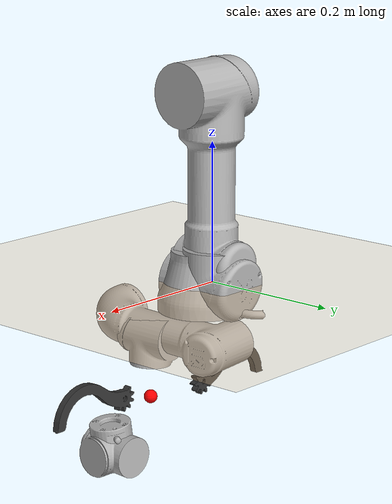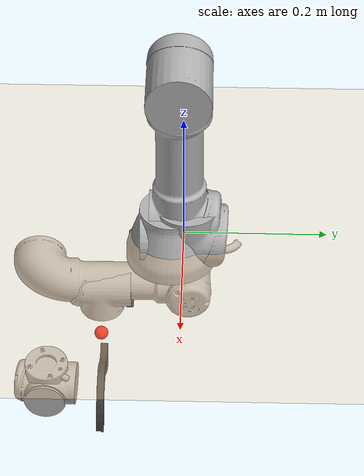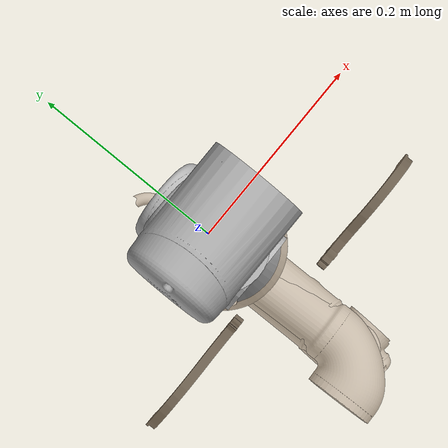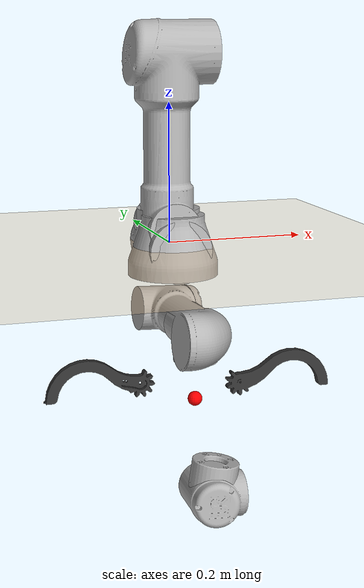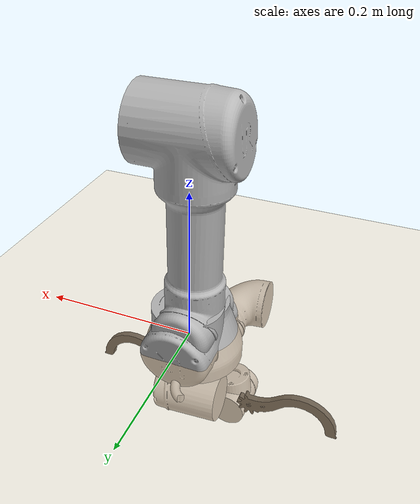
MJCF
<mujoco model="UR3">
    <compiler angle="radian" />
    <asset>
        <mesh name="link1-v4" file="meshes/link1-v4.stl" scale="0.001 0.001 0.001" />
        <mesh name="base_link-v3" file="meshes/base_link-v3.stl" scale="0.001 0.001 0.001" />
        <mesh name="link2-v3" file="meshes/link2-v3.stl" scale="0.001 0.001 0.001" />
        <mesh name="link3-v3" file="meshes/link3-v3.stl" scale="0.001 0.001 0.001" />
        <mesh name="link4-v3" file="meshes/link4-v3.stl" scale="0.001 0.001 0.001" />
        <mesh name="link5-v3" file="meshes/link5-v3.stl" scale="0.001 0.001 0.001" />
        <mesh name="link6-v3" file="meshes/link6-v3.stl" scale="0.001 0.001 0.001" />
        <mesh name="Left_Grip" file="meshes/Left_Grip.stl" scale="0.001 0.001 0.001" />
        <mesh name="Right_Grip" file="meshes/Right_Grip.stl" scale="0.001 0.001 0.001" />
        <mesh name="Door" file="meshes/Door.stl" scale="0.001 0.001 0.001" />

        <material name="gripper_mat" rgba="0.2 0.2 0.2 1"/>
    </asset>
    <worldbody>
        <light directional="true" pos="-0.5 0.5 3" dir="0 0 -1" />
        <geom pos="0 0 0" size="1 1 1" type="plane" rgba="1 0.83 0.61 0.5" />

        <body name="ur3_base" pos="0 0 0">
            <geom name="base_vis" type="mesh" mesh="base_link-v3" rgba="0.7 0.7 0.7 1"/>

            <body name="link1" pos="0 0 0.1519" euler="0 0 3.14159265">
                <joint name="shoulder_pan" axis="0 0 1" pos="0 0 0"/>
                <geom name="link1_vis" type="mesh" mesh="link1-v4" pos="0 0 -0.1519" euler="0 0 3.14159" rgba="0.7 0.7 0.7 1"/>
                <inertial mass="2.0" pos="0 0 0" fullinertia="0.008 0.008 0.002 0 0 0"/>

                <body name="link2" pos="0 0.1198 0" euler="1.570796327 0 0">
                    <joint name="shoulder_lift" axis="0 1 0" pos="0 0 0"/>
                    <geom name="link2_vis" type="mesh" mesh="link2-v3" pos="0 0 0.1198" euler="1.57 0 -1.57" rgba="0.7 0.7 0.7 1"/>
                    <inertial mass="3.42" pos="0 0 0.12" fullinertia="0.02 0.02 0.007 0 0 0"/>

                    <body name="link3" pos="0 -0.24365 0" euler="0 0 0">
                        <joint name="elbow" axis="0 1 0" pos="0 0 0"/>
                        <geom name="link3_vis" type="mesh" mesh="link3-v3" pos="0 0 0.027" euler="1.57 0 -1.57" rgba="0.7 0.7 0.7 1"/>
                        <inertial mass="1.26" pos="0 0 0.1" fullinertia="0.002 0.002 0.001 0 0 0"/>

                        <body name="link4" pos="0 -0.21325 0" euler="0 0 0">
                            <joint name="wrist_1" axis="0 1 0" pos="0 0 0"/>
                            <geom name="link4_vis" type="mesh" mesh="link4-v3" pos="0 0 -0.085" euler="1.57 0 -1.57" rgba="0.7 0.7 0.7 1"/>
                            <inertial mass="0.8" pos="0 0 0" fullinertia="0.001 0.001 0.001 0 0 0"/>

                            <body name="link5" pos="0 0.11235 0" euler="1.570796327 0 0">
                                <joint name="wrist_2" axis="0 0 1" pos="0 0 0"/>
                                <geom name="link5_vis" type="mesh" mesh="link5-v3" pos="0 0 -0.085" euler="0 0 0" rgba="0.7 0.7 0.7 1"/>
                                <inertial mass="0.8" pos="0 0 0" fullinertia="0.001 0.001 0.001 0 0 0"/>

                                <body name="link6" pos="0 0 0.08535" euler="-1.570796327 0 0">
                                    <joint name="wrist_3" axis="0 1 0" pos="0 0 0"/>
                                    <geom name="link6_vis" type="mesh" mesh="link6-v3" pos="0 0 -0.082" euler="1.57 0 0" rgba="0.7 0.7 0.7 1"/>

                                    <site name="ee_site" pos="0 0.0819 0" euler="-1.57079632 0 0" size="0.01" rgba="1 0 0 1"/>

                                    <body name="Left_Grip" pos="0 0.082 0.016" euler="0 0 1.57">
                                        <joint name="link6_Grip-Driver" type="hinge" axis="0 0 1" pos="0 0 0"/>
                                        <geom name="Left_Grip_geom" type="mesh" mesh="Left_Grip" material="gripper_mat"/>
                                    </body>
                                    <body name="Right_Grip" pos="0 0.082 -0.016" euler="0 0 -1.57">
                                        <joint name="link6_Grip-Link" type="hinge" axis="0 0 1" pos="0 0 0"/>
                                        <geom name="Right_Grip_geom" type="mesh" mesh="Right_Grip" material="gripper_mat"/>
                                    </body>
                                </body>
                            </body>
                        </body>
                    </body>
                </body>
            </body>
        </body>
    </worldbody>
    <equality>
        <!-- Open/close symmetrically: q_link = -q_driver -->
        <joint joint1="link6_Grip-Driver" joint2="link6_Grip-Link" ratio="-1"/>
    </equality>
</mujoco>
